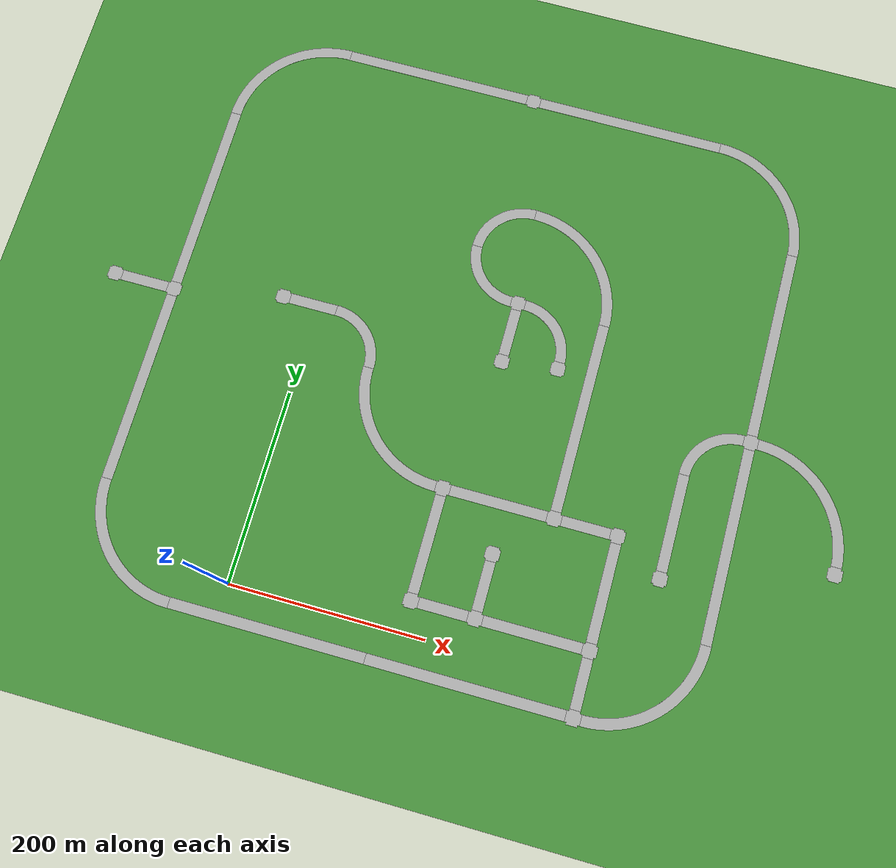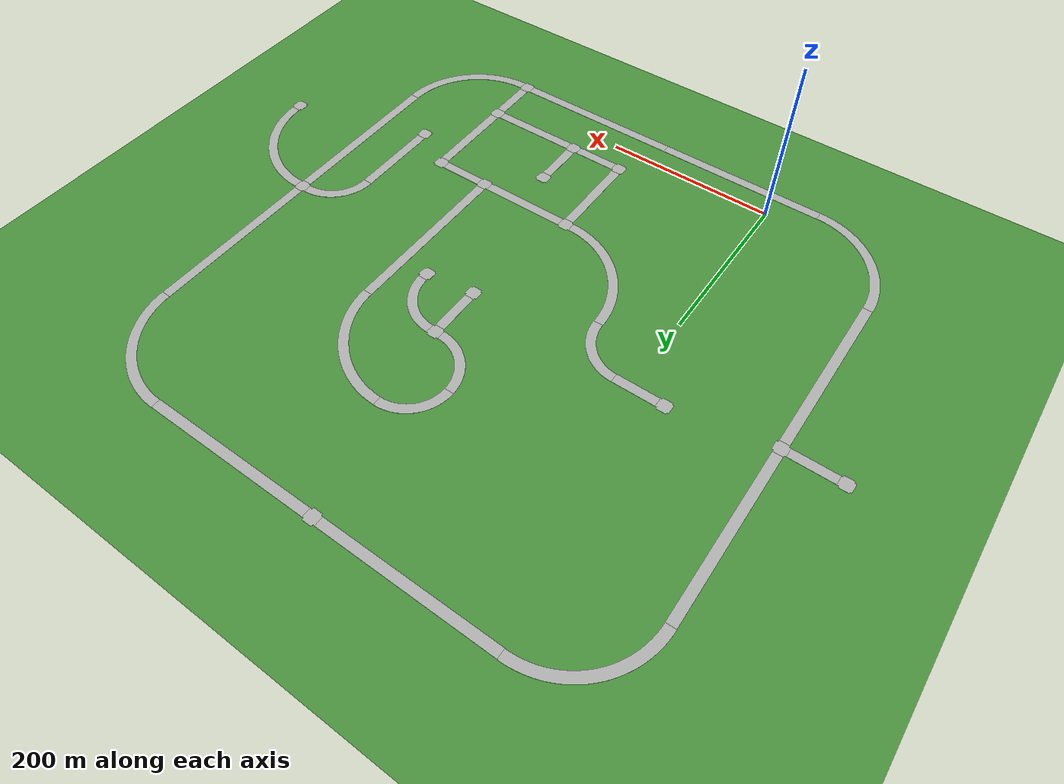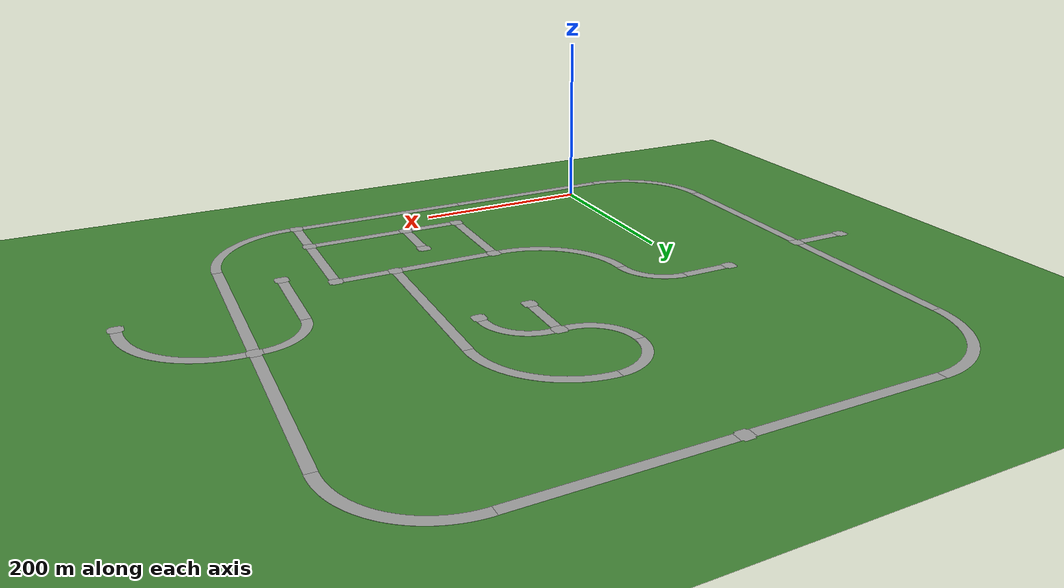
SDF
<sdf version="1.6">
 <world name="default">
  <light name="sun" type="directional">
   <pose>0 0 10 0 -0 0</pose>
   <diffuse>0.8 0.8 0.8 1</diffuse>
   <specular>0.2 0.2 0.2 1</specular>
   <attenuation>
    <range>10000</range>
    <constant>0.9</constant>
    <linear>0.01</linear>
    <quadratic>0.001</quadratic>
   </attenuation>
   <direction>0 0 -1</direction>
  </light>
  <model name="ground_plane">
   <static>1</static>
   <link name="link">
    <collision name="collision">
     <geometry><plane><normal>0 0 1</normal><size>10000 10000</size></plane></geometry>
     <surface><friction><ode><mu>100</mu><mu2>50</mu2></ode></friction></surface>
    </collision>
    <visual name="visual">
     <cast_shadows>0</cast_shadows>
     <geometry><plane><normal>0 0 1</normal><size>10000 10000</size></plane></geometry>
     <material>
      <script>
       <uri>model://grass_background/materials/scripts</uri>
       <uri>model://grass_background/materials/textures</uri>
       <name>GrassBackground</name>
      </script>
     </material>
    </visual>
    <velocity_decay><linear>0</linear><angular>0</angular></velocity_decay>
   </link>
  </model>
  <physics name="default_physics" default="0" type="ode">
   <max_step_size>0.001</max_step_size>
   <real_time_factor>1</real_time_factor>
   <real_time_update_rate>1000</real_time_update_rate>
  </physics>
  <scene>
   <ambient>0.4 0.4 0.4 1</ambient>
   <background>0 0.9 0.9 1</background>
   <shadows>1</shadows>
   <grid>0</grid>
  </scene>
  <spherical_coordinates>
   <surface_model>EARTH_WGS84</surface_model>
   <latitude_deg>0</latitude_deg>
   <longitude_deg>0</longitude_deg>
   <elevation>0</elevation>
   <heading_deg>0</heading_deg>
  </spherical_coordinates>
  <gravity>0 0 -9.8</gravity>
  <magnetic_field>6e-06 2.3e-05 -4.2e-05</magnetic_field>
  <atmosphere type="adiabatic"/>
  <model name="Straight Road - 50m_0">
   <static>1</static>
   <link name="link">
    <inertial>
     <mass>1</mass>
     <inertia><ixx>1</ixx><iyy>1</iyy><izz>1</izz><ixy>0</ixy><ixz>0</ixz><iyz>0</iyz></inertia>
    </inertial>
    <collision name="collision">
     <geometry>
      <mesh><uri>model://straight_road_50m/meshes/straight_road_50m.dae</uri><scale>1 1 1</scale></mesh>
     </geometry>
    </collision>
    <visual name="visual">
     <geometry>
      <mesh><uri>model://straight_road_50m/meshes/straight_road_50m.dae</uri><scale>1 1 1</scale></mesh>
     </geometry>
    </visual>
   </link>
   <pose>-5.66653 286.813 0 0 -0 3.14159</pose>
  </model>
  <model name="Curved Road - 50m_0">
   <static>1</static>
   <link name="link">
    <inertial>
     <mass>1</mass>
     <inertia><ixx>1</ixx><iyy>1</iyy><izz>1</izz><ixy>0</ixy><ixz>0</ixz><iyz>0</iyz></inertia>
    </inertial>
    <collision name="collision">
     <geometry>
      <mesh><uri>model://curved_road_50m/meshes/curved_road_50m.dae</uri><scale>1 1 1</scale></mesh>
     </geometry>
    </collision>
    <visual name="visual">
     <geometry>
      <mesh><uri>model://curved_road_50m/meshes/curved_road_50m.dae</uri><scale>1 1 1</scale></mesh>
     </geometry>
    </visual>
   </link>
   <pose>47.0369 274.769 0 0 -0 1.5707</pose>
  </model>
  <model name="Curved Road - 100m_1">
   <static>1</static>
   <link name="link">
    <inertial>
     <mass>1</mass>
     <inertia><ixx>1</ixx><iyy>1</iyy><izz>1</izz><ixy>0</ixy><ixz>0</ixz><iyz>0</iyz></inertia>
    </inertial>
    <collision name="collision">
     <geometry>
      <mesh><uri>model://curved_road_100m/meshes/curved_road_100m.dae</uri><scale>1 1 1</scale></mesh>
     </geometry>
    </collision>
    <visual name="visual">
     <geometry>
      <mesh><uri>model://curved_road_100m/meshes/curved_road_100m.dae</uri><scale>1 1 1</scale></mesh>
     </geometry>
    </visual>
   </link>
   <pose>116.321 194.347 0 0 0 -1.5707</pose>
  </model>
  <model name="Intersection_0">
   <static>1</static>
   <link name="link">
    <inertial>
     <mass>1</mass>
     <inertia><ixx>1</ixx><iyy>1</iyy><izz>1</izz><ixy>0</ixy><ixz>0</ixz><iyz>0</iyz></inertia>
    </inertial>
    <collision name="collision">
     <geometry><mesh><uri>model://intersection/meshes/intersection.dae</uri><scale>1 1 1</scale></mesh></geometry>
    </collision>
    <visual name="visual">
     <geometry><mesh><uri>model://intersection/meshes/intersection.dae</uri><scale>1 1 1</scale></mesh></geometry>
    </visual>
   </link>
   <pose>176.536 147.109 0 0 -0 0</pose>
  </model>
  <model name="Straight Road - 100m">
   <static>1</static>
   <link name="link">
    <inertial>
     <mass>1</mass>
     <inertia><ixx>1</ixx><iyy>1</iyy><izz>1</izz><ixy>0</ixy><ixz>0</ixz><iyz>0</iyz></inertia>
    </inertial>
    <collision name="collision">
     <geometry>
      <mesh><uri>model://straight_road_100m/meshes/straight_road_100m.dae</uri><scale>1 1 1</scale></mesh>
     </geometry>
    </collision>
    <visual name="visual">
     <geometry>
      <mesh><uri>model://straight_road_100m/meshes/straight_road_100m.dae</uri><scale>1 1 1</scale></mesh>
     </geometry>
    </visual>
   </link>
   <pose>166.52 89.6183 0 0 -0 1.5707</pose>
  </model>
  <model name="Intersection_1">
   <static>1</static>
   <link name="link">
    <inertial>
     <mass>1</mass>
     <inertia><ixx>1</ixx><iyy>1</iyy><izz>1</izz><ixy>0</ixy><ixz>0</ixz><iyz>0</iyz></inertia>
    </inertial>
    <collision name="collision">
     <geometry><mesh><uri>model://intersection/meshes/intersection.dae</uri><scale>1 1 1</scale></mesh></geometry>
    </collision>
    <visual name="visual">
     <geometry><mesh><uri>model://intersection/meshes/intersection.dae</uri><scale>1 1 1</scale></mesh></geometry>
    </visual>
   </link>
   <pose>176.549 32.2399 0 0 -0 0</pose>
  </model>
  <model name="Straight Road - 50m_1">
   <static>1</static>
   <link name="link">
    <inertial>
     <mass>1</mass>
     <inertia><ixx>1</ixx><iyy>1</iyy><izz>1</izz><ixy>0</ixy><ixz>0</ixz><iyz>0</iyz></inertia>
    </inertial>
    <collision name="collision">
     <geometry>
      <mesh><uri>model://straight_road_50m/meshes/straight_road_50m.dae</uri><scale>1 1 1</scale></mesh>
     </geometry>
    </collision>
    <visual name="visual">
     <geometry>
      <mesh><uri>model://straight_road_50m/meshes/straight_road_50m.dae</uri><scale>1 1 1</scale></mesh>
     </geometry>
    </visual>
   </link>
   <pose>209.05 42.2811 0 0 -0 0</pose>
  </model>
  <model name="Intersection">
   <static>1</static>
   <link name="link">
    <inertial>
     <mass>1</mass>
     <inertia><ixx>1</ixx><iyy>1</iyy><izz>1</izz><ixy>0</ixy><ixz>0</ixz><iyz>0</iyz></inertia>
    </inertial>
    <collision name="collision">
     <geometry><mesh><uri>model://intersection/meshes/intersection.dae</uri><scale>1 1 1</scale></mesh></geometry>
    </collision>
    <visual name="visual">
     <geometry><mesh><uri>model://intersection/meshes/intersection.dae</uri><scale>1 1 1</scale></mesh></geometry>
    </visual>
   </link>
   <pose>241.563 97.2249 0 0 -0 0</pose>
  </model>
  <model name="Intersection_3">
   <static>1</static>
   <link name="link">
    <inertial>
     <mass>1</mass>
     <inertia><ixx>1</ixx><iyy>1</iyy><izz>1</izz><ixy>0</ixy><ixz>0</ixz><iyz>0</iyz></inertia>
    </inertial>
    <collision name="collision">
     <geometry><mesh><uri>model://intersection/meshes/intersection.dae</uri><scale>1 1 1</scale></mesh></geometry>
    </collision>
    <visual name="visual">
     <geometry><mesh><uri>model://intersection/meshes/intersection.dae</uri><scale>1 1 1</scale></mesh></geometry>
    </visual>
   </link>
   <pose>241.565 32.2503 0 0 -0 0</pose>
  </model>
  <model name="Straight Road - 50m_3">
   <static>1</static>
   <link name="link">
    <inertial>
     <mass>1</mass>
     <inertia><ixx>1</ixx><iyy>1</iyy><izz>1</izz><ixy>0</ixy><ixz>0</ixz><iyz>0</iyz></inertia>
    </inertial>
    <collision name="collision">
     <geometry>
      <mesh><uri>model://straight_road_50m/meshes/straight_road_50m.dae</uri><scale>1 1 1</scale></mesh>
     </geometry>
    </collision>
    <visual name="visual">
     <geometry>
      <mesh><uri>model://straight_road_50m/meshes/straight_road_50m.dae</uri><scale>1 1 1</scale></mesh>
     </geometry>
    </visual>
   </link>
   <pose>231.55 64.7395 0 0 -0 1.5707</pose>
  </model>
  <model name="Straight Road - 100m_1">
   <static>1</static>
   <link name="link">
    <inertial>
     <mass>1</mass>
     <inertia><ixx>1</ixx><iyy>1</iyy><izz>1</izz><ixy>0</ixy><ixz>0</ixz><iyz>0</iyz></inertia>
    </inertial>
    <collision name="collision">
     <geometry>
      <mesh><uri>model://straight_road_100m/meshes/straight_road_100m.dae</uri><scale>1 1 1</scale></mesh>
     </geometry>
    </collision>
    <visual name="visual">
     <geometry>
      <mesh><uri>model://straight_road_100m/meshes/straight_road_100m.dae</uri><scale>1 1 1</scale></mesh>
     </geometry>
    </visual>
   </link>
   <pose>299.061 42.2619 0 0 -0 0</pose>
  </model>
  <model name="Intersection_4">
   <static>1</static>
   <link name="link">
    <inertial>
     <mass>1</mass>
     <inertia><ixx>1</ixx><iyy>1</iyy><izz>1</izz><ixy>0</ixy><ixz>0</ixz><iyz>0</iyz></inertia>
    </inertial>
    <collision name="collision">
     <geometry><mesh><uri>model://intersection/meshes/intersection.dae</uri><scale>1 1 1</scale></mesh></geometry>
    </collision>
    <visual name="visual">
     <geometry><mesh><uri>model://intersection/meshes/intersection.dae</uri><scale>1 1 1</scale></mesh></geometry>
    </visual>
   </link>
   <pose>356.508 32.157 0 0 -0 0</pose>
  </model>
  <model name="Intersection_5">
   <static>1</static>
   <link name="link">
    <inertial>
     <mass>1</mass>
     <inertia><ixx>1</ixx><iyy>1</iyy><izz>1</izz><ixy>0</ixy><ixz>0</ixz><iyz>0</iyz></inertia>
    </inertial>
    <collision name="collision">
     <geometry><mesh><uri>model://intersection/meshes/intersection.dae</uri><scale>1 1 1</scale></mesh></geometry>
    </collision>
    <visual name="visual">
     <geometry><mesh><uri>model://intersection/meshes/intersection.dae</uri><scale>1 1 1</scale></mesh></geometry>
    </visual>
   </link>
   <pose>356.531 -32.6316 0 0 -0 0</pose>
  </model>
  <model name="Straight Road - 50m_4">
   <static>1</static>
   <link name="link">
    <inertial>
     <mass>1</mass>
     <inertia><ixx>1</ixx><iyy>1</iyy><izz>1</izz><ixy>0</ixy><ixz>0</ixz><iyz>0</iyz></inertia>
    </inertial>
    <collision name="collision">
     <geometry>
      <mesh><uri>model://straight_road_50m/meshes/straight_road_50m.dae</uri><scale>1 1 1</scale></mesh>
     </geometry>
    </collision>
    <visual name="visual">
     <geometry>
      <mesh><uri>model://straight_road_50m/meshes/straight_road_50m.dae</uri><scale>1 1 1</scale></mesh>
     </geometry>
    </visual>
   </link>
   <pose>346.514 -0.169984 0 0 -0 1.5707</pose>
  </model>
  <model name="Curved Road - 100m">
   <static>1</static>
   <link name="link">
    <inertial>
     <mass>1</mass>
     <inertia><ixx>1</ixx><iyy>1</iyy><izz>1</izz><ixy>0</ixy><ixz>0</ixz><iyz>0</iyz></inertia>
    </inertial>
    <collision name="collision">
     <geometry>
      <mesh><uri>model://curved_road_100m/meshes/curved_road_100m.dae</uri><scale>1 1 1</scale></mesh>
     </geometry>
    </collision>
    <visual name="visual">
     <geometry>
      <mesh><uri>model://curved_road_100m/meshes/curved_road_100m.dae</uri><scale>1 1 1</scale></mesh>
     </geometry>
    </visual>
   </link>
   <pose>416.694 14.4029 0 0 -0 0</pose>
  </model>
  <model name="Straight Road - 200m">
   <static>1</static>
   <link name="link">
    <inertial>
     <mass>1</mass>
     <inertia><ixx>1</ixx><iyy>1</iyy><izz>1</izz><ixy>0</ixy><ixz>0</ixz><iyz>0</iyz></inertia>
    </inertial>
    <collision name="collision">
     <geometry>
      <mesh><uri>model://straight_road_200m/meshes/straight_road_200m.dae</uri><scale>1 1 1</scale></mesh>
     </geometry>
    </collision>
    <visual name="visual">
     <geometry>
      <mesh><uri>model://straight_road_200m/meshes/straight_road_200m.dae</uri><scale>1 1 1</scale></mesh>
     </geometry>
    </visual>
   </link>
   <pose>453.747 167.103 0 0 -0 1.5707</pose>
  </model>
  <model name="Straight Road - 200m_0">
   <static>1</static>
   <link name="link">
    <inertial>
     <mass>1</mass>
     <inertia><ixx>1</ixx><iyy>1</iyy><izz>1</izz><ixy>0</ixy><ixz>0</ixz><iyz>0</iyz></inertia>
    </inertial>
    <collision name="collision">
     <geometry>
      <mesh><uri>model://straight_road_200m/meshes/straight_road_200m.dae</uri><scale>1 1 1</scale></mesh>
     </geometry>
    </collision>
    <visual name="visual">
     <geometry>
      <mesh><uri>model://straight_road_200m/meshes/straight_road_200m.dae</uri><scale>1 1 1</scale></mesh>
     </geometry>
    </visual>
   </link>
   <pose>453.71 382.057 0 0 -0 1.5707</pose>
  </model>
  <model name="Intersection_6">
   <static>1</static>
   <link name="link">
    <inertial>
     <mass>1</mass>
     <inertia><ixx>1</ixx><iyy>1</iyy><izz>1</izz><ixy>0</ixy><ixz>0</ixz><iyz>0</iyz></inertia>
    </inertial>
    <collision name="collision">
     <geometry><mesh><uri>model://intersection/meshes/intersection.dae</uri><scale>1 1 1</scale></mesh></geometry>
    </collision>
    <visual name="visual">
     <geometry><mesh><uri>model://intersection/meshes/intersection.dae</uri><scale>1 1 1</scale></mesh></geometry>
    </visual>
   </link>
   <pose>463.742 274.586 0 0 -0 0</pose>
  </model>
  <model name="Curved Road - 50m">
   <static>1</static>
   <link name="link">
    <inertial>
     <mass>1</mass>
     <inertia><ixx>1</ixx><iyy>1</iyy><izz>1</izz><ixy>0</ixy><ixz>0</ixz><iyz>0</iyz></inertia>
    </inertial>
    <collision name="collision">
     <geometry>
      <mesh><uri>model://curved_road_50m/meshes/curved_road_50m.dae</uri><scale>1 1 1</scale></mesh>
     </geometry>
    </collision>
    <visual name="visual">
     <geometry>
      <mesh><uri>model://curved_road_50m/meshes/curved_road_50m.dae</uri><scale>1 1 1</scale></mesh>
     </geometry>
    </visual>
   </link>
   <pose>428.494 252.338 0 0 -0 3.14159</pose>
  </model>
  <model name="Curved Road - 100m_0">
   <static>1</static>
   <link name="link">
    <inertial>
     <mass>1</mass>
     <inertia><ixx>1</ixx><iyy>1</iyy><izz>1</izz><ixy>0</ixy><ixz>0</ixz><iyz>0</iyz></inertia>
    </inertial>
    <collision name="collision">
     <geometry>
      <mesh><uri>model://curved_road_100m/meshes/curved_road_100m.dae</uri><scale>1 1 1</scale></mesh>
     </geometry>
    </collision>
    <visual name="visual">
     <geometry>
      <mesh><uri>model://curved_road_100m/meshes/curved_road_100m.dae</uri><scale>1 1 1</scale></mesh>
     </geometry>
    </visual>
   </link>
   <pose>523.765 227.251 0 0 -0 1.5707</pose>
  </model>
  <model name="Straight Road - 100m_2">
   <static>1</static>
   <link name="link">
    <inertial>
     <mass>1</mass>
     <inertia><ixx>1</ixx><iyy>1</iyy><izz>1</izz><ixy>0</ixy><ixz>0</ixz><iyz>0</iyz></inertia>
    </inertial>
    <collision name="collision">
     <geometry>
      <mesh><uri>model://straight_road_100m/meshes/straight_road_100m.dae</uri><scale>1 1 1</scale></mesh>
     </geometry>
    </collision>
    <visual name="visual">
     <geometry>
      <mesh><uri>model://straight_road_100m/meshes/straight_road_100m.dae</uri><scale>1 1 1</scale></mesh>
     </geometry>
    </visual>
   </link>
   <pose>396.242 174.661 0 0 -0 1.5707</pose>
  </model>
  <model name="Intersection_7">
   <static>1</static>
   <link name="link">
    <inertial>
     <mass>1</mass>
     <inertia><ixx>1</ixx><iyy>1</iyy><izz>1</izz><ixy>0</ixy><ixz>0</ixz><iyz>0</iyz></inertia>
    </inertial>
    <collision name="collision">
     <geometry><mesh><uri>model://intersection/meshes/intersection.dae</uri><scale>1 1 1</scale></mesh></geometry>
    </collision>
    <visual name="visual">
     <geometry><mesh><uri>model://intersection/meshes/intersection.dae</uri><scale>1 1 1</scale></mesh></geometry>
    </visual>
   </link>
   <pose>406.217 117.178 0 0 -0 0</pose>
  </model>
  <model name="Intersection_8">
   <static>1</static>
   <link name="link">
    <inertial>
     <mass>1</mass>
     <inertia><ixx>1</ixx><iyy>1</iyy><izz>1</izz><ixy>0</ixy><ixz>0</ixz><iyz>0</iyz></inertia>
    </inertial>
    <collision name="collision">
     <geometry><mesh><uri>model://intersection/meshes/intersection.dae</uri><scale>1 1 1</scale></mesh></geometry>
    </collision>
    <visual name="visual">
     <geometry><mesh><uri>model://intersection/meshes/intersection.dae</uri><scale>1 1 1</scale></mesh></geometry>
    </visual>
   </link>
   <pose>570.985 167.06 0 0 -0 0</pose>
  </model>
  <model name="Straight Road - 100m_3">
   <static>1</static>
   <link name="link">
    <inertial>
     <mass>1</mass>
     <inertia><ixx>1</ixx><iyy>1</iyy><izz>1</izz><ixy>0</ixy><ixz>0</ixz><iyz>0</iyz></inertia>
    </inertial>
    <collision name="collision">
     <geometry>
      <mesh><uri>model://straight_road_100m/meshes/straight_road_100m.dae</uri><scale>1 1 1</scale></mesh>
     </geometry>
    </collision>
    <visual name="visual">
     <geometry>
      <mesh><uri>model://straight_road_100m/meshes/straight_road_100m.dae</uri><scale>1 1 1</scale></mesh>
     </geometry>
    </visual>
   </link>
   <pose>234.026 157.141 0 0 -0 0</pose>
  </model>
  <model name="Intersection_9">
   <static>1</static>
   <link name="link">
    <inertial>
     <mass>1</mass>
     <inertia><ixx>1</ixx><iyy>1</iyy><izz>1</izz><ixy>0</ixy><ixz>0</ixz><iyz>0</iyz></inertia>
    </inertial>
    <collision name="collision">
     <geometry><mesh><uri>model://intersection/meshes/intersection.dae</uri><scale>1 1 1</scale></mesh></geometry>
    </collision>
    <visual name="visual">
     <geometry><mesh><uri>model://intersection/meshes/intersection.dae</uri><scale>1 1 1</scale></mesh></geometry>
    </visual>
   </link>
   <pose>291.485 147.133 0 0 -0 0</pose>
  </model>
  <model name="Straight Road - 50m_6">
   <static>1</static>
   <link name="link">
    <inertial>
     <mass>1</mass>
     <inertia><ixx>1</ixx><iyy>1</iyy><izz>1</izz><ixy>0</ixy><ixz>0</ixz><iyz>0</iyz></inertia>
    </inertial>
    <collision name="collision">
     <geometry>
      <mesh><uri>model://straight_road_50m/meshes/straight_road_50m.dae</uri><scale>1 1 1</scale></mesh>
     </geometry>
    </collision>
    <visual name="visual">
     <geometry>
      <mesh><uri>model://straight_road_50m/meshes/straight_road_50m.dae</uri><scale>1 1 1</scale></mesh>
     </geometry>
    </visual>
   </link>
   <pose>323.931 157.137 0 0 -0 0</pose>
  </model>
  <model name="Intersection_11">
   <static>1</static>
   <link name="link">
    <inertial>
     <mass>1</mass>
     <inertia><ixx>1</ixx><iyy>1</iyy><izz>1</izz><ixy>0</ixy><ixz>0</ixz><iyz>0</iyz></inertia>
    </inertial>
    <collision name="collision">
     <geometry><mesh><uri>model://intersection/meshes/intersection.dae</uri><scale>1 1 1</scale></mesh></geometry>
    </collision>
    <visual name="visual">
     <geometry><mesh><uri>model://intersection/meshes/intersection.dae</uri><scale>1 1 1</scale></mesh></geometry>
    </visual>
   </link>
   <pose>356.418 147.126 0 0 -0 0</pose>
  </model>
  <model name="Straight Road - 100m_4">
   <static>1</static>
   <link name="link">
    <inertial>
     <mass>1</mass>
     <inertia><ixx>1</ixx><iyy>1</iyy><izz>1</izz><ixy>0</ixy><ixz>0</ixz><iyz>0</iyz></inertia>
    </inertial>
    <collision name="collision">
     <geometry>
      <mesh><uri>model://straight_road_100m/meshes/straight_road_100m.dae</uri><scale>1 1 1</scale></mesh>
     </geometry>
    </collision>
    <visual name="visual">
     <geometry>
      <mesh><uri>model://straight_road_100m/meshes/straight_road_100m.dae</uri><scale>1 1 1</scale></mesh>
     </geometry>
    </visual>
   </link>
   <pose>346.524 89.6598 0 0 -0 1.5707</pose>
  </model>
  <model name="Straight Road - 200m_1">
   <static>1</static>
   <link name="link">
    <inertial>
     <mass>1</mass>
     <inertia><ixx>1</ixx><iyy>1</iyy><izz>1</izz><ixy>0</ixy><ixz>0</ixz><iyz>0</iyz></inertia>
    </inertial>
    <collision name="collision">
     <geometry>
      <mesh><uri>model://straight_road_200m/meshes/straight_road_200m.dae</uri><scale>1 1 1</scale></mesh>
     </geometry>
    </collision>
    <visual name="visual">
     <geometry>
      <mesh><uri>model://straight_road_200m/meshes/straight_road_200m.dae</uri><scale>1 1 1</scale></mesh>
     </geometry>
    </visual>
   </link>
   <pose>281.481 254.588 0 0 -0 1.5707</pose>
  </model>
  <model name="Curved Road - 50m_4">
   <static>1</static>
   <link name="link">
    <inertial>
     <mass>1</mass>
     <inertia><ixx>1</ixx><iyy>1</iyy><izz>1</izz><ixy>0</ixy><ixz>0</ixz><iyz>0</iyz></inertia>
    </inertial>
    <collision name="collision">
     <geometry>
      <mesh><uri>model://curved_road_50m/meshes/curved_road_50m.dae</uri><scale>1 1 1</scale></mesh>
     </geometry>
    </collision>
    <visual name="visual">
     <geometry>
      <mesh><uri>model://curved_road_50m/meshes/curved_road_50m.dae</uri><scale>1 1 1</scale></mesh>
     </geometry>
    </visual>
   </link>
   <pose>164.191 432.227 0 0 -0 3.14159</pose>
  </model>
  <model name="Curved Road - 100m_2">
   <static>1</static>
   <link name="link">
    <inertial>
     <mass>1</mass>
     <inertia><ixx>1</ixx><iyy>1</iyy><izz>1</izz><ixy>0</ixy><ixz>0</ixz><iyz>0</iyz></inertia>
    </inertial>
    <collision name="collision">
     <geometry>
      <mesh><uri>model://curved_road_100m/meshes/curved_road_100m.dae</uri><scale>1 1 1</scale></mesh>
     </geometry>
    </collision>
    <visual name="visual">
     <geometry>
      <mesh><uri>model://curved_road_100m/meshes/curved_road_100m.dae</uri><scale>1 1 1</scale></mesh>
     </geometry>
    </visual>
   </link>
   <pose>244.454 407.229 0 0 -0 1.5707</pose>
  </model>
  <model name="Curved Road - 50m_5">
   <static>1</static>
   <link name="link">
    <inertial>
     <mass>1</mass>
     <inertia><ixx>1</ixx><iyy>1</iyy><izz>1</izz><ixy>0</ixy><ixz>0</ixz><iyz>0</iyz></inertia>
    </inertial>
    <collision name="collision">
     <geometry>
      <mesh><uri>model://curved_road_50m/meshes/curved_road_50m.dae</uri><scale>1 1 1</scale></mesh>
     </geometry>
    </collision>
    <visual name="visual">
     <geometry>
      <mesh><uri>model://curved_road_50m/meshes/curved_road_50m.dae</uri><scale>1 1 1</scale></mesh>
     </geometry>
    </visual>
   </link>
   <pose>164.185 376.761 0 0 0 -1.5707</pose>
  </model>
  <model name="Curved Road - 50m_6">
   <static>1</static>
   <link name="link">
    <inertial>
     <mass>1</mass>
     <inertia><ixx>1</ixx><iyy>1</iyy><izz>1</izz><ixy>0</ixy><ixz>0</ixz><iyz>0</iyz></inertia>
    </inertial>
    <collision name="collision">
     <geometry>
      <mesh><uri>model://curved_road_50m/meshes/curved_road_50m.dae</uri><scale>1 1 1</scale></mesh>
     </geometry>
    </collision>
    <visual name="visual">
     <geometry>
      <mesh><uri>model://curved_road_50m/meshes/curved_road_50m.dae</uri><scale>1 1 1</scale></mesh>
     </geometry>
    </visual>
   </link>
   <pose>234.539 332.317 0 0 -0 1.5707</pose>
  </model>
  <model name="Intersection_12">
   <static>1</static>
   <link name="link">
    <inertial>
     <mass>1</mass>
     <inertia><ixx>1</ixx><iyy>1</iyy><izz>1</izz><ixy>0</ixy><ixz>0</ixz><iyz>0</iyz></inertia>
    </inertial>
    <collision name="collision">
     <geometry><mesh><uri>model://intersection/meshes/intersection.dae</uri><scale>1 1 1</scale></mesh></geometry>
    </collision>
    <visual name="visual">
     <geometry><mesh><uri>model://intersection/meshes/intersection.dae</uri><scale>1 1 1</scale></mesh></geometry>
    </visual>
   </link>
   <pose>199.368 354.541 0 0 -0 0</pose>
  </model>
  <model name="Intersection_13">
   <static>1</static>
   <link name="link">
    <inertial>
     <mass>1</mass>
     <inertia><ixx>1</ixx><iyy>1</iyy><izz>1</izz><ixy>0</ixy><ixz>0</ixz><iyz>0</iyz></inertia>
    </inertial>
    <collision name="collision">
     <geometry><mesh><uri>model://intersection/meshes/intersection.dae</uri><scale>1 1 1</scale></mesh></geometry>
    </collision>
    <visual name="visual">
     <geometry><mesh><uri>model://intersection/meshes/intersection.dae</uri><scale>1 1 1</scale></mesh></geometry>
    </visual>
   </link>
   <pose>256.779 297.111 0 0 -0 0</pose>
  </model>
  <model name="Straight Road - 50m_8">
   <static>1</static>
   <link name="link">
    <inertial>
     <mass>1</mass>
     <inertia><ixx>1</ixx><iyy>1</iyy><izz>1</izz><ixy>0</ixy><ixz>0</ixz><iyz>0</iyz></inertia>
    </inertial>
    <collision name="collision">
     <geometry>
      <mesh><uri>model://straight_road_50m/meshes/straight_road_50m.dae</uri><scale>1 1 1</scale></mesh>
     </geometry>
    </collision>
    <visual name="visual">
     <geometry>
      <mesh><uri>model://straight_road_50m/meshes/straight_road_50m.dae</uri><scale>1 1 1</scale></mesh>
     </geometry>
    </visual>
   </link>
   <pose>189.38 322.06 0 0 -0 1.5707</pose>
  </model>
  <model name="Intersection_14">
   <static>1</static>
   <link name="link">
    <inertial>
     <mass>1</mass>
     <inertia><ixx>1</ixx><iyy>1</iyy><izz>1</izz><ixy>0</ixy><ixz>0</ixz><iyz>0</iyz></inertia>
    </inertial>
    <collision name="collision">
     <geometry><mesh><uri>model://intersection/meshes/intersection.dae</uri><scale>1 1 1</scale></mesh></geometry>
    </collision>
    <visual name="visual">
     <geometry><mesh><uri>model://intersection/meshes/intersection.dae</uri><scale>1 1 1</scale></mesh></geometry>
    </visual>
   </link>
   <pose>199.403 289.587 0 0 -0 0</pose>
  </model>
  <model name="Curved Road - 100m_4">
   <static>1</static>
   <link name="link">
    <inertial>
     <mass>1</mass>
     <inertia><ixx>1</ixx><iyy>1</iyy><izz>1</izz><ixy>0</ixy><ixz>0</ixz><iyz>0</iyz></inertia>
    </inertial>
    <collision name="collision">
     <geometry>
      <mesh><uri>model://curved_road_100m/meshes/curved_road_100m.dae</uri><scale>1 1 1</scale></mesh>
     </geometry>
    </collision>
    <visual name="visual">
     <geometry>
      <mesh><uri>model://curved_road_100m/meshes/curved_road_100m.dae</uri><scale>1 1 1</scale></mesh>
     </geometry>
    </visual>
   </link>
   <pose>416.689 534.794 0 0 -0 1.5707</pose>
  </model>
  <model name="Straight Road - 200m_2">
   <static>1</static>
   <link name="link">
    <inertial>
     <mass>1</mass>
     <inertia><ixx>1</ixx><iyy>1</iyy><izz>1</izz><ixy>0</ixy><ixz>0</ixz><iyz>0</iyz></inertia>
    </inertial>
    <collision name="collision">
     <geometry>
      <mesh><uri>model://straight_road_200m/meshes/straight_road_200m.dae</uri><scale>1 1 1</scale></mesh>
     </geometry>
    </collision>
    <visual name="visual">
     <geometry>
      <mesh><uri>model://straight_road_200m/meshes/straight_road_200m.dae</uri><scale>1 1 1</scale></mesh>
     </geometry>
    </visual>
   </link>
   <pose>264.019 571.845 0 0 -0 3.14159</pose>
  </model>
  <model name="Straight Road - 200m_3">
   <static>1</static>
   <link name="link">
    <inertial>
     <mass>1</mass>
     <inertia><ixx>1</ixx><iyy>1</iyy><izz>1</izz><ixy>0</ixy><ixz>0</ixz><iyz>0</iyz></inertia>
    </inertial>
    <collision name="collision">
     <geometry>
      <mesh><uri>model://straight_road_200m/meshes/straight_road_200m.dae</uri><scale>1 1 1</scale></mesh>
     </geometry>
    </collision>
    <visual name="visual">
     <geometry>
      <mesh><uri>model://straight_road_200m/meshes/straight_road_200m.dae</uri><scale>1 1 1</scale></mesh>
     </geometry>
    </visual>
   </link>
   <pose>49.0518 571.812 0 0 -0 3.14159</pose>
  </model>
  <model name="Curved Road - 100m_5">
   <static>1</static>
   <link name="link">
    <inertial>
     <mass>1</mass>
     <inertia><ixx>1</ixx><iyy>1</iyy><izz>1</izz><ixy>0</ixy><ixz>0</ixz><iyz>0</iyz></inertia>
    </inertial>
    <collision name="collision">
     <geometry>
      <mesh><uri>model://curved_road_100m/meshes/curved_road_100m.dae</uri><scale>1 1 1</scale></mesh>
     </geometry>
    </collision>
    <visual name="visual">
     <geometry>
      <mesh><uri>model://curved_road_100m/meshes/curved_road_100m.dae</uri><scale>1 1 1</scale></mesh>
     </geometry>
    </visual>
   </link>
   <pose>-103.678 534.77 0 0 -0 3.14159</pose>
  </model>
  <model name="Straight Road - 200m_4">
   <static>1</static>
   <link name="link">
    <inertial>
     <mass>1</mass>
     <inertia><ixx>1</ixx><iyy>1</iyy><izz>1</izz><ixy>0</ixy><ixz>0</ixz><iyz>0</iyz></inertia>
    </inertial>
    <collision name="collision">
     <geometry>
      <mesh><uri>model://straight_road_200m/meshes/straight_road_200m.dae</uri><scale>1 1 1</scale></mesh>
     </geometry>
    </collision>
    <visual name="visual">
     <geometry>
      <mesh><uri>model://straight_road_200m/meshes/straight_road_200m.dae</uri><scale>1 1 1</scale></mesh>
     </geometry>
    </visual>
   </link>
   <pose>-140.704 382.057 0 0 0 -1.5707</pose>
  </model>
  <model name="Intersection_15">
   <static>1</static>
   <link name="link">
    <inertial>
     <mass>1</mass>
     <inertia><ixx>1</ixx><iyy>1</iyy><izz>1</izz><ixy>0</ixy><ixz>0</ixz><iyz>0</iyz></inertia>
    </inertial>
    <collision name="collision">
     <geometry><mesh><uri>model://intersection/meshes/intersection.dae</uri><scale>1 1 1</scale></mesh></geometry>
    </collision>
    <visual name="visual">
     <geometry><mesh><uri>model://intersection/meshes/intersection.dae</uri><scale>1 1 1</scale></mesh></geometry>
    </visual>
   </link>
   <pose>-150.694 274.62 0 0 -0 0</pose>
  </model>
  <model name="Straight Road - 200m_5">
   <static>1</static>
   <link name="link">
    <inertial>
     <mass>1</mass>
     <inertia><ixx>1</ixx><iyy>1</iyy><izz>1</izz><ixy>0</ixy><ixz>0</ixz><iyz>0</iyz></inertia>
    </inertial>
    <collision name="collision">
     <geometry>
      <mesh><uri>model://straight_road_200m/meshes/straight_road_200m.dae</uri><scale>1 1 1</scale></mesh>
     </geometry>
    </collision>
    <visual name="visual">
     <geometry>
      <mesh><uri>model://straight_road_200m/meshes/straight_road_200m.dae</uri><scale>1 1 1</scale></mesh>
     </geometry>
    </visual>
   </link>
   <pose>-140.685 167.119 0 0 0 -1.5707</pose>
  </model>
  <model name="Curved Road - 100m_6">
   <static>1</static>
   <link name="link">
    <inertial>
     <mass>1</mass>
     <inertia><ixx>1</ixx><iyy>1</iyy><izz>1</izz><ixy>0</ixy><ixz>0</ixz><iyz>0</iyz></inertia>
    </inertial>
    <collision name="collision">
     <geometry>
      <mesh><uri>model://curved_road_100m/meshes/curved_road_100m.dae</uri><scale>1 1 1</scale></mesh>
     </geometry>
    </collision>
    <visual name="visual">
     <geometry>
      <mesh><uri>model://curved_road_100m/meshes/curved_road_100m.dae</uri><scale>1 1 1</scale></mesh>
     </geometry>
    </visual>
   </link>
   <pose>-103.63 14.3902 0 0 0 -1.5707</pose>
  </model>
  <model name="Straight Road - 200m_6">
   <static>1</static>
   <link name="link">
    <inertial>
     <mass>1</mass>
     <inertia><ixx>1</ixx><iyy>1</iyy><izz>1</izz><ixy>0</ixy><ixz>0</ixz><iyz>0</iyz></inertia>
    </inertial>
    <collision name="collision">
     <geometry>
      <mesh><uri>model://straight_road_200m/meshes/straight_road_200m.dae</uri><scale>1 1 1</scale></mesh>
     </geometry>
    </collision>
    <visual name="visual">
     <geometry>
      <mesh><uri>model://straight_road_200m/meshes/straight_road_200m.dae</uri><scale>1 1 1</scale></mesh>
     </geometry>
    </visual>
   </link>
   <pose>49.078 -22.6414 0 0 -0 0</pose>
  </model>
  <model name="Straight Road - 200m_7">
   <static>1</static>
   <link name="link">
    <inertial>
     <mass>1</mass>
     <inertia><ixx>1</ixx><iyy>1</iyy><izz>1</izz><ixy>0</ixy><ixz>0</ixz><iyz>0</iyz></inertia>
    </inertial>
    <collision name="collision">
     <geometry>
      <mesh><uri>model://straight_road_200m/meshes/straight_road_200m.dae</uri><scale>1 1 1</scale></mesh>
     </geometry>
    </collision>
    <visual name="visual">
     <geometry>
      <mesh><uri>model://straight_road_200m/meshes/straight_road_200m.dae</uri><scale>1 1 1</scale></mesh>
     </geometry>
    </visual>
   </link>
   <pose>249.053 -22.6449 0 0 -0 0</pose>
  </model>
  <model name="Intersection_16">
   <static>1</static>
   <link name="link">
    <inertial>
     <mass>1</mass>
     <inertia><ixx>1</ixx><iyy>1</iyy><izz>1</izz><ixy>0</ixy><ixz>0</ixz><iyz>0</iyz></inertia>
    </inertial>
    <collision name="collision">
     <geometry><mesh><uri>model://intersection/meshes/intersection.dae</uri><scale>1 1 1</scale></mesh></geometry>
    </collision>
    <visual name="visual">
     <geometry><mesh><uri>model://intersection/meshes/intersection.dae</uri><scale>1 1 1</scale></mesh></geometry>
    </visual>
   </link>
   <pose>156.544 581.834 0 0 -0 0</pose>
  </model>
  <model name="Intersection_17">
   <static>1</static>
   <link name="link">
    <inertial>
     <mass>1</mass>
     <inertia><ixx>1</ixx><iyy>1</iyy><izz>1</izz><ixy>0</ixy><ixz>0</ixz><iyz>0</iyz></inertia>
    </inertial>
    <collision name="collision">
     <geometry><mesh><uri>model://intersection/meshes/intersection.dae</uri><scale>1 1 1</scale></mesh></geometry>
    </collision>
    <visual name="visual">
     <geometry><mesh><uri>model://intersection/meshes/intersection.dae</uri><scale>1 1 1</scale></mesh></geometry>
    </visual>
   </link>
   <pose>-38.1676 296.809 0 0 -0 0</pose>
  </model>
  <model name="Straight Road - 50m_9">
   <static>1</static>
   <link name="link">
    <inertial>
     <mass>1</mass>
     <inertia><ixx>1</ixx><iyy>1</iyy><izz>1</izz><ixy>0</ixy><ixz>0</ixz><iyz>0</iyz></inertia>
    </inertial>
    <collision name="collision">
     <geometry>
      <mesh><uri>model://straight_road_50m/meshes/straight_road_50m.dae</uri><scale>1 1 1</scale></mesh>
     </geometry>
    </collision>
    <visual name="visual">
     <geometry>
      <mesh><uri>model://straight_road_50m/meshes/straight_road_50m.dae</uri><scale>1 1 1</scale></mesh>
     </geometry>
    </visual>
   </link>
   <pose>-183.198 284.61 0 0 -0 0</pose>
  </model>
  <model name="Intersection_18">
   <static>1</static>
   <link name="link">
    <inertial>
     <mass>1</mass>
     <inertia><ixx>1</ixx><iyy>1</iyy><izz>1</izz><ixy>0</ixy><ixz>0</ixz><iyz>0</iyz></inertia>
    </inertial>
    <collision name="collision">
     <geometry><mesh><uri>model://intersection/meshes/intersection.dae</uri><scale>1 1 1</scale></mesh></geometry>
    </collision>
    <visual name="visual">
     <geometry><mesh><uri>model://intersection/meshes/intersection.dae</uri><scale>1 1 1</scale></mesh></geometry>
    </visual>
   </link>
   <pose>-215.595 274.592 0 0 -0 0</pose>
  </model>
 </world>
</sdf>
